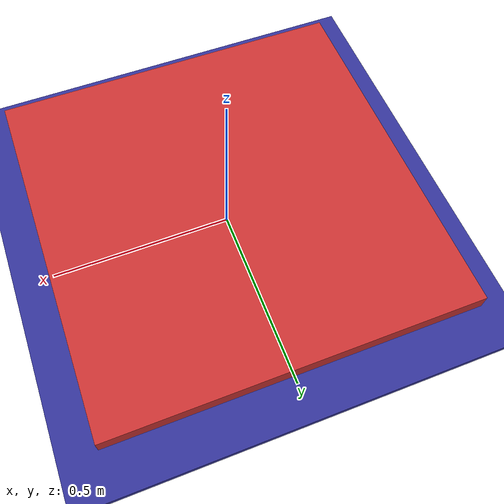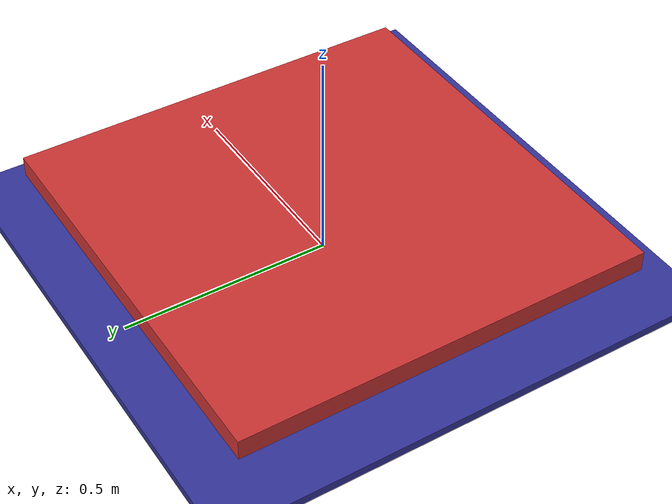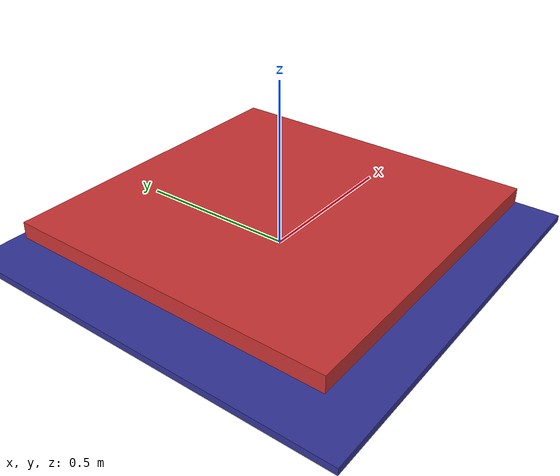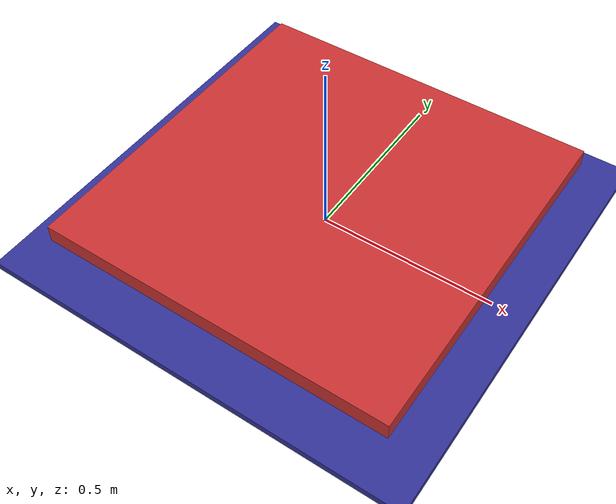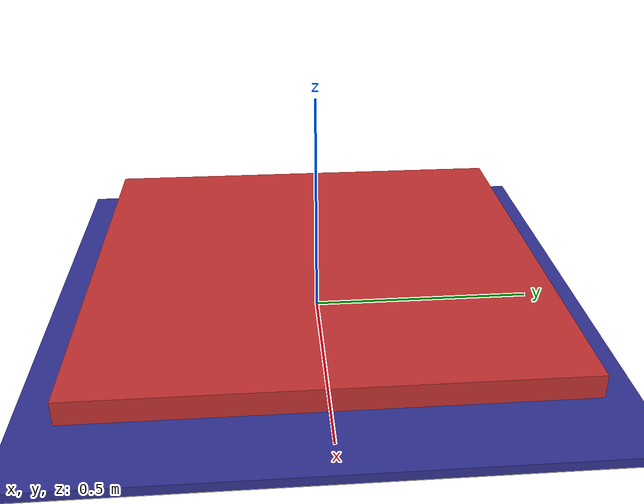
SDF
<?xml version="1.0" ?>
<sdf version="1.7">
  <world name="drone_test_world">

    <!-- --- встроенная ground plane --- -->
    <model name="ground_plane">
      <static>true</static>
      <link name="link">
        <visual name="visual">
          <geometry>
            <plane>
              <normal>0 0 1</normal>
              <size>100 100</size>
            </plane>
          </geometry>
          <material>
            <ambient>0.5 0.5 0.5 1</ambient>
            <diffuse>0.7 0.7 0.7 1</diffuse>
          </material>
        </visual>
        <collision name="collision">
          <geometry>
            <plane>
              <normal>0 0 1</normal>
              <size>100 100</size>
            </plane>
          </geometry>
        </collision>
      </link>
    </model>

    <!-- --- встроенный directional light вместо sun --- -->
    <light name="sun" type="directional">
      <cast_shadows>true</cast_shadows>
      <pose>0 0 10 0 0 0</pose>
      <diffuse>1 1 1 1</diffuse>
      <specular>0.2 0.2 0.2 1</specular>
      <direction>-0.5 0.5 -1</direction>
    </light>

    <!-- --- зона посадки (статичная) --- -->
    <model name="landing_zone">
      <static>true</static>
      <link name="link">
        <pose>0 0 0.01 0 0 0</pose>
        <visual name="visual">
          <geometry>
            <box><size>5 5 0.02</size></box>
          </geometry>
          <material>
            <ambient>0.2 0.2 0.6 1</ambient>
            <diffuse>0.2 0.2 0.6 1</diffuse>
          </material>
        </visual>
        <collision name="collision">
          <geometry>
            <box><size>5 5 0.02</size></box>
          </geometry>
        </collision>
      </link>
    </model>

    <!-- --- движущаяся платформа (возьмём модель из папки models) --- -->
    <include>
      <uri>model://moving_platform</uri>
    </include>

  </world>
</sdf>

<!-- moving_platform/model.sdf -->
<sdf version="1.7">
  <model name="moving_platform">
    <static>false</static>
    <pose>0 0 0.1 0 0 0</pose>

    <link name="link">
      <collision name="collision">
        <geometry>
          <box>
            <size>1 1 0.05</size>
          </box>
        </geometry>
      </collision>
      <visual name="visual">
        <geometry>
          <box>
            <size>1 1 0.05</size>
          </box>
        </geometry>
        <material>
          <ambient>0.8 0.2 0.2 1</ambient>
        </material>
      </visual>
    </link>

    <plugin filename="libgz-sim-velocity-control-system.so"
      name="gz::sim::systems::VelocityControl">
      <linearVelocity>0.5 0 0</linearVelocity>
      <linkName>moving_platform::link</linkName>
    </plugin>

  </model>
</sdf>
